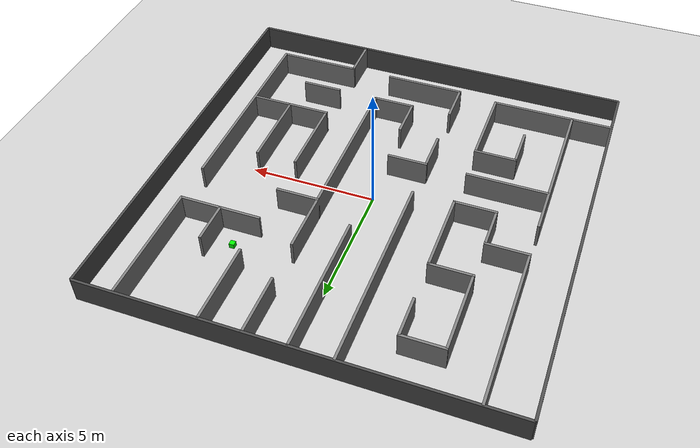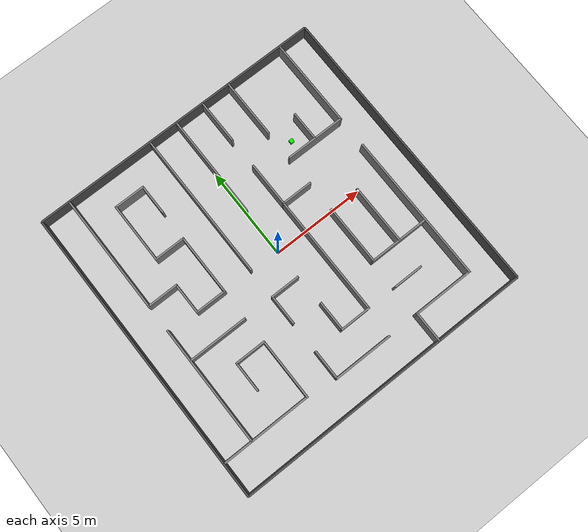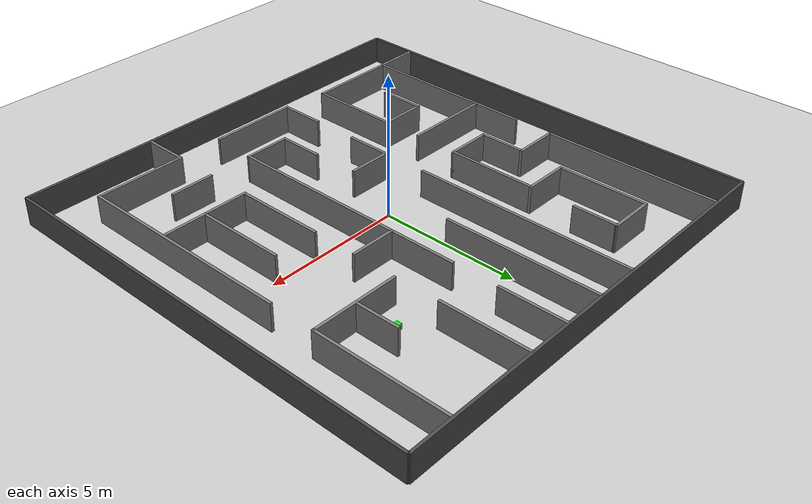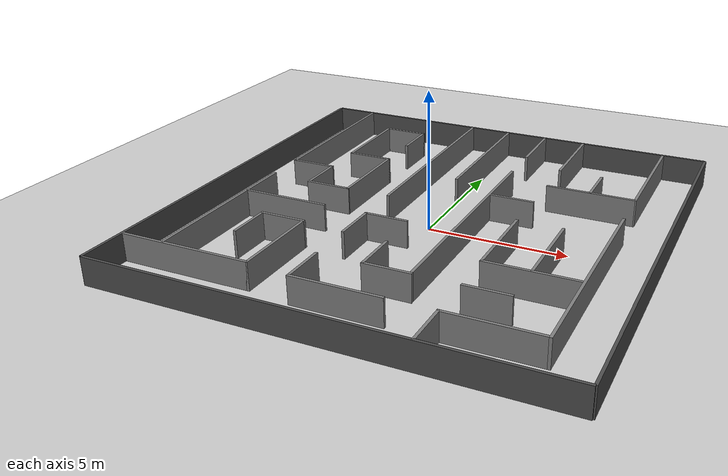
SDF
<?xml version="1.0" ?>

<sdf version="1.8">

  <world name="maze_world">

    <plugin filename="gz-sim-physics-system" name="gz::sim::systems::Physics"></plugin>

    <plugin filename="gz-sim-user-commands-system" name="gz::sim::systems::UserCommands"></plugin>

    <plugin filename="gz-sim-scene-broadcaster-system" name="gz::sim::systems::SceneBroadcaster"></plugin>

    <plugin filename="gz-sim-sensors-system" name="gz::sim::systems::Sensors">
      <render_engine>ogre2</render_engine>
    </plugin>

    <light type="directional" name="sun">

      <cast_shadows>true</cast_shadows>

      <pose>0 0 10 0 0 0</pose>

      <diffuse>0.8 0.8 0.8 1</diffuse>

      <specular>0.2 0.2 0.2 1</specular>

      <direction>-0.5 0.1 -0.9</direction>

    </light>

    <model name="ground_plane">

      <static>true</static>

      <link name="link">

        <collision name="collision"><geometry><plane><normal>0 0 1</normal><size>100 100</size></plane></geometry></collision>

        <visual name="visual">

          <geometry><plane><normal>0 0 1</normal><size>100 100</size></plane></geometry>

          <material><ambient>0.8 0.8 0.8 1</ambient><diffuse>0.8 0.8 0.8 1</diffuse></material>

        </visual>

      </link>

    </model>

    <model name="boundary_north">

  <static>true</static><pose>8 0 0.5 0 0 0</pose> <link name="link">

    <collision name="collision"><geometry><box><size>0.1 16 1</size></box></geometry></collision> <visual name="visual"><geometry><box><size>0.1 16 1</size></box></geometry><material><ambient>0.3 0.3 0.3 1</ambient><diffuse>0.3 0.3 0.3 1</diffuse></material></visual>

  </link>

</model>

<model name="boundary_south">

  <static>true</static><pose>-8 0 0.5 0 0 0</pose> <link name="link">

    <collision name="collision"><geometry><box><size>0.1 16 1</size></box></geometry></collision> <visual name="visual"><geometry><box><size>0.1 16 1</size></box></geometry><material><ambient>0.3 0.3 0.3 1</ambient><diffuse>0.3 0.3 0.3 1</diffuse></material></visual>

  </link>

</model>

<model name="boundary_east">

  <static>true</static><pose>0 8 0.5 0 0 0</pose> <link name="link">

    <collision name="collision"><geometry><box><size>16 0.1 1</size></box></geometry></collision> <visual name="visual"><geometry><box><size>16 0.1 1</size></box></geometry><material><ambient>0.3 0.3 0.3 1</ambient><diffuse>0.3 0.3 0.3 1</diffuse></material></visual>

  </link>

</model>

<model name="boundary_west">

  <static>true</static><pose>0 -8 0.5 0 0 0</pose> <link name="link">

    <collision name="collision"><geometry><box><size>16 0.1 1</size></box></geometry></collision> <visual name="visual"><geometry><box><size>16 0.1 1</size></box></geometry><material><ambient>0.3 0.3 0.3 1</ambient><diffuse>0.3 0.3 0.3 1</diffuse></material></visual>

  </link>

</model>

    <model name="muro_interno_1">

      <static>true</static><pose>-6.4 4.8 0.5 0 0 0</pose>

      <link name="link"><collision name="collision"><geometry><box><size>0.1 6.4 1</size></box></geometry></collision><visual name="visual"><geometry><box><size>0.1 6.4 1</size></box></geometry><material><ambient>0.5 0.5 0.5 1</ambient><diffuse>0.5 0.5 0.5 1</diffuse></material></visual></link>

    </model>

    <model name="muro_interno_2">

      <static>true</static><pose>-6.4 -3 0.5 0 0 0</pose>

      <link name="link"><collision name="collision"><geometry><box><size>0.1 6.4 1</size></box></geometry></collision><visual name="visual"><geometry><box><size>0.1 6.4 1</size></box></geometry><material><ambient>0.5 0.5 0.5 1</ambient><diffuse>0.5 0.5 0.5 1</diffuse></material></visual></link>

    </model>

    <model name="muro_interno_3">

      <static>true</static><pose>-4.8 4.8 0.5 0 0 0</pose>

      <link name="link"><collision name="collision"><geometry><box><size>0.1 3.2 1</size></box></geometry></collision><visual name="visual"><geometry><box><size>0.1 3.2 1</size></box></geometry><material><ambient>0.5 0.5 0.5 1</ambient><diffuse>0.5 0.5 0.5 1</diffuse></material></visual></link>

    </model>

    <model name="muro_interno_4">

      <static>true</static><pose>-4.8 0.8 0.5 0 0 0</pose>

      <link name="link"><collision name="collision"><geometry><box><size>0.1 1.6 1</size></box></geometry></collision><visual name="visual"><geometry><box><size>0.1 1.6 1</size></box></geometry><material><ambient>0.5 0.5 0.5 1</ambient><diffuse>0.5 0.5 0.5 1</diffuse></material></visual></link>

    </model>

    <model name="muro_interno_5">

      <static>true</static><pose>-5.6 1.62 0.5 0 0 0</pose>

      <link name="link"><collision name="collision"><geometry><box><size>1.7 0.1 1</size></box></geometry></collision><visual name="visual"><geometry><box><size>1.7 0.1 1</size></box></geometry><material><ambient>0.5 0.5 0.5 1</ambient><diffuse>0.5 0.5 0.5 1</diffuse></material></visual></link>

    </model>

    <model name="muro_interno_6">

      <static>true</static><pose>-5.6 -6.2 0.5 0 0 0</pose>

      <link name="link"><collision name="collision"><geometry><box><size>4.8 0.1 1</size></box></geometry></collision><visual name="visual"><geometry><box><size>4.8 0.1 1</size></box></geometry><material><ambient>0.5 0.5 0.5 1</ambient><diffuse>0.5 0.5 0.5 1</diffuse></material></visual></link>

    </model>

    <model name="muro_interno_7">

      <static>true</static><pose>-4.8 -1.6 0.5 0 0 0</pose>

      <link name="link"><collision name="collision"><geometry><box><size>3.2 0.1 1</size></box></geometry></collision><visual name="visual"><geometry><box><size>3.2 0.1 1</size></box></geometry><material><ambient>0.5 0.5 0.5 1</ambient><diffuse>0.5 0.5 0.5 1</diffuse></material></visual></link>

    </model>

    <model name="muro_interno_8">

      <static>true</static><pose>-3.2 -4.65 0.5 0 0 0</pose>

      <link name="link"><collision name="collision"><geometry><box><size>0.1 3.2 1</size></box></geometry></collision><visual name="visual"><geometry><box><size>0.1 3.2 1</size></box></geometry><material><ambient>0.5 0.5 0.5 1</ambient><diffuse>0.5 0.5 0.5 1</diffuse></material></visual></link>

    </model>

    <model name="muro_interno_9">

      <static>true</static><pose>-4 3.2 0.5 0 0 0</pose>

      <link name="link"><collision name="collision"><geometry><box><size>1.7 0.1 1</size></box></geometry></collision><visual name="visual"><geometry><box><size>1.7 0.1 1</size></box></geometry><material><ambient>0.5 0.5 0.5 1</ambient><diffuse>0.5 0.5 0.5 1</diffuse></material></visual></link>

    </model>

    <model name="muro_interno_10">

      <static>true</static><pose>-4 -3 0.5 0 0 0</pose>

      <link name="link"><collision name="collision"><geometry><box><size>1.7 0.1 1</size></box></geometry></collision><visual name="visual"><geometry><box><size>1.7 0.1 1</size></box></geometry><material><ambient>0.5 0.5 0.5 1</ambient><diffuse>0.5 0.5 0.5 1</diffuse></material></visual></link>

    </model>

    <model name="muro_interno_11">

      <static>true</static><pose>-4.8 -3.8 0.5 0 0 0</pose>

      <link name="link"><collision name="collision"><geometry><box><size>0.1 1.6 1</size></box></geometry></collision><visual name="visual"><geometry><box><size>0.1 1.6 1</size></box></geometry><material><ambient>0.5 0.5 0.5 1</ambient><diffuse>0.5 0.5 0.5 1</diffuse></material></visual></link>

    </model>

    <model name="muro_interno_12">

      <static>true</static><pose>-4 0 0.5 0 0 0</pose>

      <link name="link"><collision name="collision"><geometry><box><size>1.7 0.1 1</size></box></geometry></collision><visual name="visual"><geometry><box><size>1.7 0.1 1</size></box></geometry><material><ambient>0.5 0.5 0.5 1</ambient><diffuse>0.5 0.5 0.5 1</diffuse></material></visual></link>

    </model>

    <model name="muro_interno_13">

      <static>true</static><pose>-4 6.4 0.5 0 0 0</pose>

      <link name="link"><collision name="collision"><geometry><box><size>1.7 0.1 1</size></box></geometry></collision><visual name="visual"><geometry><box><size>1.7 0.1 1</size></box></geometry><material><ambient>0.5 0.5 0.5 1</ambient><diffuse>0.5 0.5 0.5 1</diffuse></material></visual></link>

    </model>

    <model name="muro_interno_14">

      <static>true</static><pose>-3.2 1.6 0.5 0 0 0</pose>

      <link name="link"><collision name="collision"><geometry><box><size>0.1 3.2 1</size></box></geometry></collision><visual name="visual"><geometry><box><size>0.1 3.2 1</size></box></geometry><material><ambient>0.5 0.5 0.5 1</ambient><diffuse>0.5 0.5 0.5 1</diffuse></material></visual></link>

    </model>

    <model name="muro_interno_15">

      <static>true</static><pose>-3.2 5.6 0.5 0 0 0</pose>

      <link name="link"><collision name="collision"><geometry><box><size>0.1 1.6 1</size></box></geometry></collision><visual name="visual"><geometry><box><size>0.1 1.6 1</size></box></geometry><material><ambient>0.5 0.5 0.5 1</ambient><diffuse>0.5 0.5 0.5 1</diffuse></material></visual></link>

    </model>

    <model name="muro_interno_16">

      <static>true</static><pose>-1.6 4 0.5 0 0 0</pose>

      <link name="link"><collision name="collision"><geometry><box><size>0.1 8 1</size></box></geometry></collision><visual name="visual"><geometry><box><size>0.1 8 1</size></box></geometry><material><ambient>0.5 0.5 0.5 1</ambient><diffuse>0.5 0.5 0.5 1</diffuse></material></visual></link>

    </model>

    <model name="muro_interno_17">

      <static>true</static><pose>-1.6 -2.4 0.5 0 0 0</pose>

      <link name="link"><collision name="collision"><geometry><box><size>0.1 1.6 1</size></box></geometry></collision><visual name="visual"><geometry><box><size>0.1 1.6 1</size></box></geometry><material><ambient>0.5 0.5 0.5 1</ambient><diffuse>0.5 0.5 0.5 1</diffuse></material></visual></link>

    </model>

    <model name="muro_interno_18">

      <static>true</static><pose>-1.6 -5.6 0.5 0 0 0</pose>

      <link name="link"><collision name="collision"><geometry><box><size>0.1 1.6 1</size></box></geometry></collision><visual name="visual"><geometry><box><size>0.1 1.6 1</size></box></geometry><material><ambient>0.5 0.5 0.5 1</ambient><diffuse>0.5 0.5 0.5 1</diffuse></material></visual></link>

    </model>

    <model name="muro_interno_19">

      <static>true</static><pose>-0.85 -1.6 0.5 0 0 0</pose>

      <link name="link"><collision name="collision"><geometry><box><size>1.6 0.1 1</size></box></geometry></collision><visual name="visual"><geometry><box><size>1.6 0.1 1</size></box></geometry><material><ambient>0.5 0.5 0.5 1</ambient><diffuse>0.5 0.5 0.5 1</diffuse></material></visual></link>

    </model>

    <model name="muro_interno_20">

      <static>true</static><pose>-0.05 -6.4 0.5 0 0 0</pose>

      <link name="link"><collision name="collision"><geometry><box><size>3.2 0.1 1</size></box></geometry></collision><visual name="visual"><geometry><box><size>3.2 0.1 1</size></box></geometry><material><ambient>0.5 0.5 0.5 1</ambient><diffuse>0.5 0.5 0.5 1</diffuse></material></visual></link>

    </model>

    <model name="muro_interno_21">

      <static>true</static><pose>0 5.2 0.5 0 0 0</pose>

      <link name="link"><collision name="collision"><geometry><box><size>0.1 5.6 1</size></box></geometry></collision><visual name="visual"><geometry><box><size>0.1 5.6 1</size></box></geometry><material><ambient>0.5 0.5 0.5 1</ambient><diffuse>0.5 0.5 0.5 1</diffuse></material></visual></link>

    </model>

    <model name="muro_interno_22">

      <static>true</static><pose>0 -4 0.5 0 0 0</pose>

      <link name="link"><collision name="collision"><geometry><box><size>0.1 1.6 1</size></box></geometry></collision><visual name="visual"><geometry><box><size>0.1 1.6 1</size></box></geometry><material><ambient>0.5 0.5 0.5 1</ambient><diffuse>0.5 0.5 0.5 1</diffuse></material></visual></link>

    </model>

    <model name="muro_interno_23">

      <static>true</static><pose>0.8 -4.8 0.5 0 0 0</pose>

      <link name="link"><collision name="collision"><geometry><box><size>1.7 0.1 1</size></box></geometry></collision><visual name="visual"><geometry><box><size>1.7 0.1 1</size></box></geometry><material><ambient>0.5 0.5 0.5 1</ambient><diffuse>0.5 0.5 0.5 1</diffuse></material></visual></link>

    </model>

    <model name="muro_interno_24">

      <static>true</static><pose>1.6 6.8 0.5 0 0 0</pose>

      <link name="link"><collision name="collision"><geometry><box><size>0.1 2.4 1</size></box></geometry></collision><visual name="visual"><geometry><box><size>0.1 2.4 1</size></box></geometry><material><ambient>0.5 0.5 0.5 1</ambient><diffuse>0.5 0.5 0.5 1</diffuse></material></visual></link>

    </model>

    <model name="muro_interno_25">

      <static>true</static><pose>1.6 -0.4 0.5 0 0 0</pose>

      <link name="link"><collision name="collision"><geometry><box><size>0.1 8.8 1</size></box></geometry></collision><visual name="visual"><geometry><box><size>0.1 8.8 1</size></box></geometry><material><ambient>0.5 0.5 0.5 1</ambient><diffuse>0.5 0.5 0.5 1</diffuse></material></visual></link>

    </model>

    <model name="muro_interno_26">

      <static>true</static><pose>2.4 1.6 0.5 0 0 0</pose>

      <link name="link"><collision name="collision"><geometry><box><size>1.7 0.1 1</size></box></geometry></collision><visual name="visual"><geometry><box><size>1.7 0.1 1</size></box></geometry><material><ambient>0.5 0.5 0.5 1</ambient><diffuse>0.5 0.5 0.5 1</diffuse></material></visual></link>

    </model>

    <model name="muro_interno_27">

      <static>true</static><pose>3.2 6.4 0.5 0 0 0</pose>

      <link name="link"><collision name="collision"><geometry><box><size>0.1 3.2 1</size></box></geometry></collision><visual name="visual"><geometry><box><size>0.1 3.2 1</size></box></geometry><material><ambient>0.5 0.5 0.5 1</ambient><diffuse>0.5 0.5 0.5 1</diffuse></material></visual></link>

    </model>

    <model name="muro_interno_28">

      <static>true</static><pose>3.2 -1.6 0.5 0 0 0</pose>

      <link name="link"><collision name="collision"><geometry><box><size>0.1 3.2 1</size></box></geometry></collision><visual name="visual"><geometry><box><size>0.1 3.2 1</size></box></geometry><material><ambient>0.5 0.5 0.5 1</ambient><diffuse>0.5 0.5 0.5 1</diffuse></material></visual></link>

    </model>

    <model name="muro_interno_29">

      <static>true</static><pose>3.2 -7.2 0.5 0 0 0</pose>

      <link name="link"><collision name="collision"><geometry><box><size>0.1 1.6 1</size></box></geometry></collision><visual name="visual"><geometry><box><size>0.1 1.6 1</size></box></geometry><material><ambient>0.5 0.5 0.5 1</ambient><diffuse>0.5 0.5 0.5 1</diffuse></material></visual></link>

    </model>

    <model name="muro_interno_30">

      <static>true</static><pose>4.8 3.2 0.5 0 0 0</pose>

      <link name="link"><collision name="collision"><geometry><box><size>3.2 0.1 1</size></box></geometry></collision><visual name="visual"><geometry><box><size>3.2 0.1 1</size></box></geometry><material><ambient>0.5 0.5 0.5 1</ambient><diffuse>0.5 0.5 0.5 1</diffuse></material></visual></link>

    </model>

    <model name="muro_interno_31">

      <static>true</static><pose>4.75 -3.2 0.5 0 0 0</pose>

      <link name="link"><collision name="collision"><geometry><box><size>3.2 0.1 1</size></box></geometry></collision><visual name="visual"><geometry><box><size>3.2 0.1 1</size></box></geometry><material><ambient>0.5 0.5 0.5 1</ambient><diffuse>0.5 0.5 0.5 1</diffuse></material></visual></link>

    </model>

    <model name="muro_interno_32">

      <static>true</static><pose>4 -4.8 0.5 0 0 0</pose>

      <link name="link"><collision name="collision"><geometry><box><size>1.6 0.1 1</size></box></geometry></collision><visual name="visual"><geometry><box><size>1.6 0.1 1</size></box></geometry><material><ambient>0.5 0.5 0.5 1</ambient><diffuse>0.5 0.5 0.5 1</diffuse></material></visual></link>

    </model>

    <model name="muro_interno_33">

      <static>true</static><pose>4.75 -6.4 0.5 0 0 0</pose>

      <link name="link"><collision name="collision"><geometry><box><size>3.2 0.1 1</size></box></geometry></collision><visual name="visual"><geometry><box><size>3.2 0.1 1</size></box></geometry><material><ambient>0.5 0.5 0.5 1</ambient><diffuse>0.5 0.5 0.5 1</diffuse></material></visual></link>

    </model>

    <model name="muro_interno_34">

      <static>true</static><pose>4.8 4 0.5 0 0 0</pose>

      <link name="link"><collision name="collision"><geometry><box><size>0.1 1.6 1</size></box></geometry></collision><visual name="visual"><geometry><box><size>0.1 1.6 1</size></box></geometry><material><ambient>0.5 0.5 0.5 1</ambient><diffuse>0.5 0.5 0.5 1</diffuse></material></visual></link>

    </model>

    <model name="muro_interno_36">

      <static>true</static><pose>4.8 -1.6 0.5 0 0 0</pose>

      <link name="link"><collision name="collision"><geometry><box><size>0.1 3.2 1</size></box></geometry></collision><visual name="visual"><geometry><box><size>0.1 3.2 1</size></box></geometry><material><ambient>0.5 0.5 0.5 1</ambient><diffuse>0.5 0.5 0.5 1</diffuse></material></visual></link>

    </model>

    <model name="muro_interno_37">

      <static>true</static><pose>6.4 5.55 0.5 0 0 0</pose>

      <link name="link"><collision name="collision"><geometry><box><size>0.1 4.8 1</size></box></geometry></collision><visual name="visual"><geometry><box><size>0.1 4.8 1</size></box></geometry><material><ambient>0.5 0.5 0.5 1</ambient><diffuse>0.5 0.5 0.5 1</diffuse></material></visual></link>

    </model>

    <model name="muro_interno_38">

      <static>true</static><pose>6.4 -2.45 0.5 0 0 0</pose>

      <link name="link"><collision name="collision"><geometry><box><size>0.1 8 1</size></box></geometry></collision><visual name="visual"><geometry><box><size>0.1 8 1</size></box></geometry><material><ambient>0.5 0.5 0.5 1</ambient><diffuse>0.5 0.5 0.5 1</diffuse></material></visual></link>

    </model>

    <model name="exit_marker">

      <static>true</static>

      <pose>4 4 0.1 0 0 0</pose>

      <link name="link">

        <collision name="collision"><geometry><box><size>0.2 0.2 0.2</size></box></geometry></collision>

        <visual name="visual">

          <geometry><box><size>0.2 0.2 0.2</size></box></geometry>

          <material><ambient>0 1 0 1</ambient><diffuse>0 1 0 1</diffuse></material>

        </visual>

      </link>

    </model>

    </world>

</sdf>
